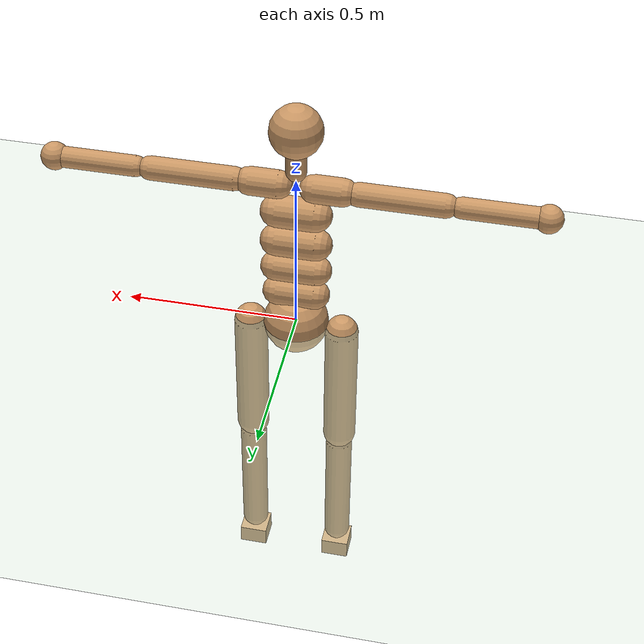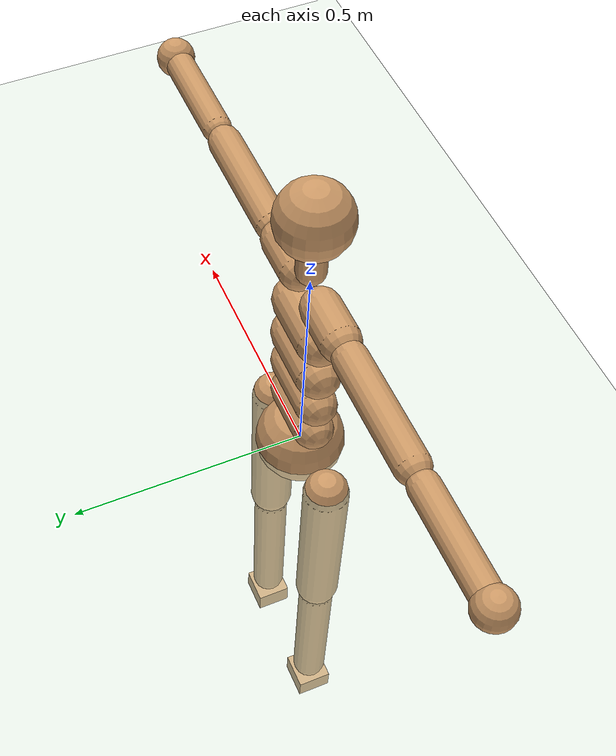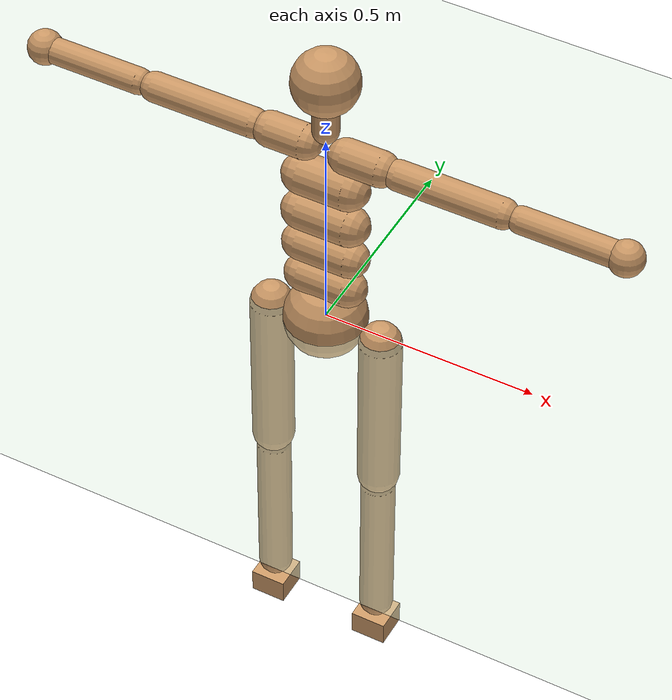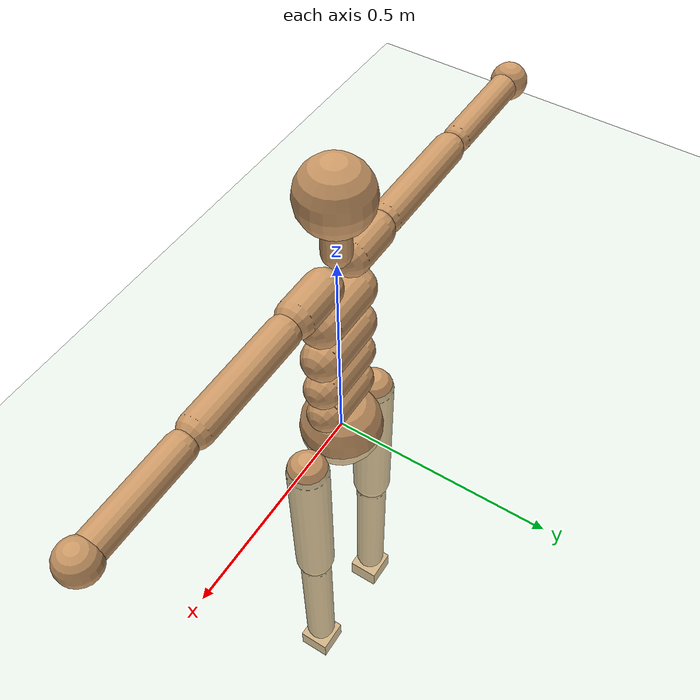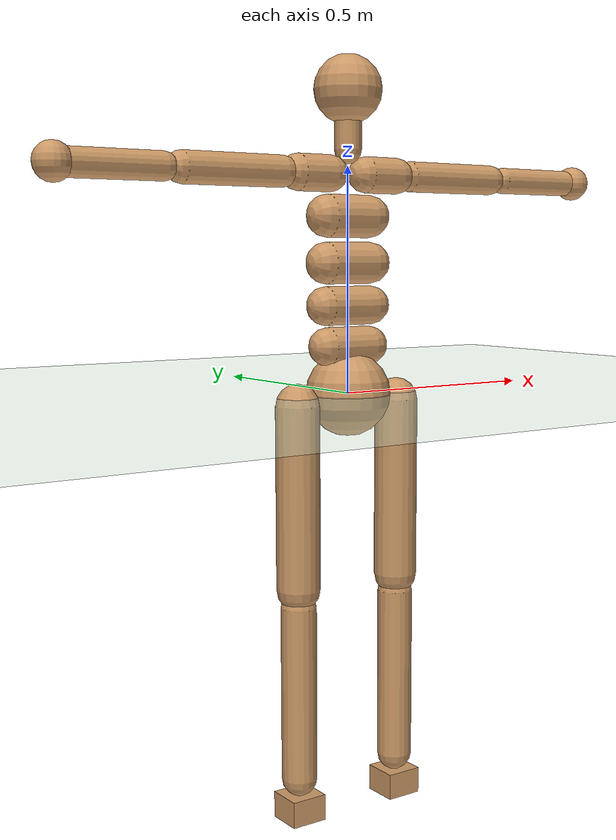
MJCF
<mujoco model="humanoid">
  <compiler angle="degree" inertiafromgeom="true" coordinate="global"/>
  <include file="./common/materials.xml"/>
  <visual>
    <headlight ambient=".4 .4 .4" diffuse=".8 .8 .8" specular="0.1 0.1 0.1"/>
    <map znear=".01"/>
    <quality shadowsize="2048"/>
  </visual>
  <default>
    <joint damping="0.0" armature="0.01" stiffness="0.0" limited="true"/>
    <geom conaffinity="7" condim="1" contype="7" margin="0.001" material="self" rgba="0.8 0.6 .4 1"/>
    <default class="expert">
        <geom conaffinity="7" condim="1" contype="7" margin="0.001" material="self" rgba="0.5 0.1 0.0 1"/>
    </default>
  </default>
  <statistic extent="3" center="0 0 1"/>
  <option timestep="0.00222222222">
    <flag contact="disable"/>
  </option>
  <asset>
    <texture type="skybox" file="./common/sky1.png" gridsize="3 4" gridlayout=".U..LFRB.D.." width="8192" height="8192"/>
    <texture builtin="flat" height="1278" mark="cross" markrgb="1 1 1" name="texgeom" random="0.01" rgb1=".8 .6 .4" rgb2=".8 .6 .4" type="cube" width="127"/>
    <material name="geom" emission="0.2" texture="texgeom" texuniform="true"/>
  </asset>
  <worldbody>
    <light cutoff="100" diffuse="1 1 1" dir="-0 0 -1.3" directional="true" exponent="1" pos="0 0 1.3" specular=".1 .1 .1"/>
    <geom condim="3" friction="1. .1 .1" material="grid" name="floor" pos="0 0 0" rgba=".8 .9 .8 1" size="100 100 .2" type="plane"/>
    <body name="Hips" user="0.0000 0.0000 0.0000" pos="0.0000 0.0000 0.0000">
      <joint armature="0" damping="0" limited="false" name="Hips" pos="0.0000 0.0000 0.0000" stiffness="0" type="free"/>
      <geom pos="0.0000 0.0000 0.0000" size="0.0950" type="sphere"/>
      <body name="Spine" user="0.0000 0.0000 0.1514928" pos="0.0000 0.0000 0.0614928">
        <geom fromto="-0.0550 0.0000 0.1064928 0.0550 0.0000 0.1064928" size="0.0430" type="capsule"/>
        <joint axis="1.0000 0.0000 0.0000" name="Spine_x" pos="0.0000 0.0000 0.0614928" range="-30.0000 45.0000" type="hinge"/>
        <joint axis="0.0000 1.0000 0.0000" name="Spine_y" pos="0.0000 0.0000 0.0614928" range="-30.0000 30.0000" type="hinge"/>
        <joint axis="0.0000 0.0000 1.0000" name="Spine_z" pos="0.0000 0.0000 0.0614928" range="-30.0000 30.0000" type="hinge"/>
        <body name="Spine1" user="0.0000 0.0000 0.2414928" pos="0.0000 0.0000 0.1514928">
          <geom fromto="-0.0600 0.0000 0.1960 0.0600 0.0000 0.1960" size="0.0430" type="capsule"/>
          <joint axis="1.0000 0.0000 0.0000" name="Spine1_x" pos="0.0000 0.0000 0.1514928" range="-30.0000 45.0000" type="hinge"/>
          <joint axis="0.0000 1.0000 0.0000" name="Spine1_y" pos="0.0000 0.0000 0.1514928" range="-30.0000 30.0000" type="hinge"/>
          <joint axis="0.0000 0.0000 1.0000" name="Spine1_z" pos="0.0000 0.0000 0.1514928" range="-30.0000 30.0000" type="hinge"/>
          <body name="Spine2" user="0.0000 0.0000 0.3414928" pos="0.0000 0.0000 0.2414928">
            <geom fromto="-0.0575 0.0000 0.2896 0.0575 0.0000 0.2896" size="0.0460" type="capsule"/>
            <joint axis="1.0000 0.0000 0.0000" name="Spine2_x" pos="0.0000 0.0000 0.2414928" range="-30.0000 45.0000" type="hinge"/>
            <joint axis="0.0000 1.0000 0.0000" name="Spine2_y" pos="0.0000 0.0000 0.2414928" range="-30.0000 30.0000" type="hinge"/>
            <joint axis="0.0000 0.0000 1.0000" name="Spine2_z" pos="0.0000 0.0000 0.2414928" range="-30.0000 30.0000" type="hinge"/>
            <body name="Spine3" user="0.0000 0.0000 0.49700757" pos="0.0000 0.0000 0.3414928">
              <geom fromto="-0.0550 0.0000 0.3914 0.0550 0.0000 0.3914" size="0.0470" type="capsule"/>
              <joint axis="1.0000 0.0000 0.0000" name="Spine3_x" pos="0.0000 0.0000 0.3414928" range="-30.0000 45.0000" type="hinge"/>
              <joint axis="0.0000 1.0000 0.0000" name="Spine3_y" pos="0.0000 0.0000 0.3414928" range="-30.0000 30.0000" type="hinge"/>
              <joint axis="0.0000 0.0000 1.0000" name="Spine3_z" pos="0.0000 0.0000 0.3414928" range="-30.0000 30.0000" type="hinge"/>
              <body name="Neck" user="0.0000 0.0000 0.68141895" pos="0.0000 0.0000 0.49700757">
                <joint axis="1.0000 0.0000 0.0000" name="Neck_x" pos="0.0000 0.0000 0.5579" range="-30.0000 45.0000" type="hinge"/>
                <joint axis="0.0000 1.0000 0.0000" name="Neck_y" pos="0.0000 0.0000 0.5579" range="-30.0000 30.0000" type="hinge"/>
                <joint axis="0.0000 0.0000 1.0000" name="Neck_z" pos="0.0000 0.0000 0.5579" range="-30.0000 30.0000" type="hinge"/>
                <geom fromto="0.0000 0.0000 0.5336 0.0000 0.0000 0.6131" size="0.0300" type="capsule"/>
                <body name="Head" user="0.0000 0.0000 0.8188" pos="0.0000 0.0000 0.68141895">
                  <geom pos="0.0000 0.0000 0.6628" size="0.0750" type="sphere"/>
                  <joint axis="1.0000 0.0000 0.0000" name="Head_x" pos="0.0000 0.0000 0.68141895" range="-30.0000 45.0000" type="hinge"/>
                  <joint axis="0.0000 1.0000 0.0000" name="Head_y" pos="0.0000 0.0000 0.68141895" range="-30.0000 30.0000" type="hinge"/>
                  <joint axis="0.0000 0.0000 1.0000" name="Head_z" pos="0.0000 0.0000 0.68141895" range="-30.0000 30.0000" type="hinge"/>
                </body>
              </body>
              <body name="RightShoulder" user="-0.1505 0.0000 0.4821" pos="-0.0286 0.0000 0.4821">
                <joint axis="1.0000 0.0000 0.0000" name="RightShoulder_x" pos="-0.0286 0.0000 0.4821" range="-20.0000 20.0000" type="hinge"/>
                <joint axis="0.0000 1.0000 0.0000" name="RightShoulder_y" pos="-0.0286 0.0000 0.4821" range="-20.0000 20.0000" type="hinge"/>
                <joint axis="0.0000 0.0000 1.0000" name="RightShoulder_z" pos="-0.0286 0.0000 0.4821" range="-20.0000 20.0000" type="hinge"/>
                <geom fromto="-0.0486 0.0000 0.4821 -0.1305 0.0000 0.4821" size="0.0400" type="capsule"/>
                <body name="RightArm" user="-0.4303 0.0000 0.4821" pos="-0.1505 0.0000 0.4821">
                  <joint axis="1.0000 0.0000 0.0000" name="RightArm_x" pos="-0.1505 0.0000 0.4821" range="-90.0000 90.0000" type="hinge"/>
                  <joint axis="0.0000 1.0000 0.0000" name="RightArm_y" pos="-0.1505 0.0000 0.4821" range="-90.0000 90.0000" type="hinge"/>
                  <joint axis="0.0000 0.0000 1.0000" name="RightArm_z" pos="-0.1505 0.0000 0.4821" range="-60.0000 90.0000" type="hinge"/>
                  <geom fromto="-0.1708 0.0000 0.4821 -0.4103 0.0000 0.4821" size="0.0340" type="capsule"/>
                  <body name="RightForeArm" user="-0.6803 0.0000 0.4821" pos="-0.4303 0.0000 0.4821">
                    <joint axis="0.0000 0.0000 1.0000" name="RightForeArm_z" pos="-0.4303 0.0000 0.4821" range="-10.0000 170.0000" type="hinge"/>
                    <geom fromto="-0.4503 0.0000 0.4821 -0.6603 0.0000 0.4821" size="0.0300" type="capsule"/>
                    <body name="RightHand" user="-0.7282 0.0000 0.4821" pos="-0.6803 0.0000 0.4821">
                      <geom pos="-0.6843 0.0000 0.4821" size="0.0400" type="sphere"/>
                      <joint axis="1.0000 0.0000 0.0000" name="RightHand_x" pos="-0.6803 0.0000 0.4821" range="-90.0000 90.0000" type="hinge"/>
                      <joint axis="0.0000 1.0000 0.0000" name="RightHand_y" pos="-0.6803 0.0000 0.4821" range="-90.0000 90.0000" type="hinge"/>
                      <joint axis="0.0000 0.0000 1.0000" name="RightHand_z" pos="-0.6803 0.0000 0.4821" range="-90.0000 90.0000" type="hinge"/>
                    </body>
                  </body>
                </body>
              </body>
              <body name="LeftShoulder" user="0.1505 0.0000 0.4821" pos="0.0286 0.0000 0.4821">
                <joint axis="1.0000 0.0000 0.0000" name="LeftShoulder_x" pos="0.0286 0.0000 0.4821" range="-20.0000 20.0000" type="hinge"/>
                <joint axis="0.0000 1.0000 0.0000" name="LeftShoulder_y" pos="0.0286 0.0000 0.4821" range="-20.0000 20.0000" type="hinge"/>
                <joint axis="0.0000 0.0000 1.0000" name="LeftShoulder_z" pos="0.0286 0.0000 0.4821" range="-20.0000 20.0000" type="hinge"/>
                <geom fromto="0.0486 0.0000 0.4821 0.1305 0.0000 0.4821" size="0.0400" type="capsule"/>
                <body name="LeftArm" user="0.4303 0.0000 0.4821" pos="0.1505 0.0000 0.4821">
                  <joint axis="1.0000 0.0000 0.0000" name="LeftArm_x" pos="0.1505 0.0000 0.4821" range="-90.0000 90.0000" type="hinge"/>
                  <joint axis="0.0000 1.0000 0.0000" name="LeftArm_y" pos="0.1505 0.0000 0.4821" range="-90.0000 90.0000" type="hinge"/>
                  <joint axis="0.0000 0.0000 1.0000" name="LeftArm_z" pos="0.1505 0.0000 0.4821" range="-90.0000 60.0000" type="hinge"/>
                  <geom fromto="0.1708 0.0000 0.4821 0.4103 0.0000 0.4821" size="0.0340" type="capsule"/>
                  <body name="LeftForeArm" user="0.6803 0.0000 0.4821" pos="0.4303 0.0000 0.4821">
                    <joint axis="0.0000 0.0000 1.0000" name="LeftForeArm_z" pos="0.4303 0.0000 0.4821" range="-170.0000 10.0000" type="hinge"/>
                    <geom fromto="0.4503 0.0000 0.4821 0.6603 0.0000 0.4821" size="0.0300" type="capsule"/>
                    <body name="LeftHand" user="0.7282 0.0000 0.4821" pos="0.6803 0.0000 0.4821">
                      <geom pos="0.6843 0.0000 0.4821" size="0.0400" type="sphere"/>
                      <joint axis="1.0000 0.0000 0.0000" name="LeftHand_x" pos="0.6803 0.0000 0.4821" range="-90.0000 90.0000" type="hinge"/>
                      <joint axis="0.0000 1.0000 0.0000" name="LeftHand_y" pos="0.6803 0.0000 0.4821" range="-90.0000 90.0000" type="hinge"/>
                      <joint axis="0.0000 0.0000 1.0000" name="LeftHand_z" pos="0.6803 0.0000 0.4821" range="-90.0000 90.0000" type="hinge"/>
                    </body>
                  </body>
                </body>
              </body>
            </body>
          </body>
        </body>
      </body>
      <body name="RightUpLeg" user="-0.13545777 0.0000 -0.45170122" pos="-0.13545777 0.0000 -0.0000">
        <joint axis="1.0000 0.0000 0.0000" name="RightUpLeg_x" pos="-0.13545777 0.0000 -0.0000" range="-170.0000 20.0000" type="hinge"/>
        <joint axis="0.0000 1.0000 0.0000" name="RightUpLeg_y" pos="-0.13545777 0.0000 -0.0000" range="-40.0000 90.0000" type="hinge"/>
        <joint axis="0.0000 0.0000 1.0000" name="RightUpLeg_z" pos="-0.13545777 0.0000 -0.0000" range="-70.0000 70.0000" type="hinge"/>
        <geom fromto="-0.13545777 0.0000 -0.0200 -0.13545777 0.0000 -0.43170122" size="0.0490" type="capsule"/>
        <body name="RightLeg" user="-0.13545777 0.0000 -0.89865848" pos="-0.13545777 0.0000 -0.45170122">
          <joint axis="1.0000 0.0000 0.0000" name="RightLeg_x" pos="-0.13545777 0.0000 -0.45170122" range="0.0000 170.0000" type="hinge"/>
          <geom contype="1" conaffinity="1" fromto="-0.13545777 0.0000 -0.47170122 -0.13545777 0.0000 -0.87165848" size="0.0400" type="capsule"/>
          <body name="RightFoot" user="-0.13545777 -0.1308 -0.9597" pos="-0.13545777 0.0000 -0.89865848">
            <geom contype="1" conaffinity="1" pos="-0.13545777 -0.0000 -0.93865848" size="0.0420 0.0410 0.0300" quat="1.0000 -0.0000 -0.0000 -0.0000" type="box"/>
            <joint axis="1.0000 0.0000 0.0000" name="RightFoot_x" pos="-0.13545777 0.0000 -0.89865848" range="-60.0000 60.0000" type="hinge"/>
            <joint axis="0.0000 1.0000 0.0000" name="RightFoot_y" pos="-0.13545777 0.0000 -0.89865848" range="-60.0000 60.0000" type="hinge"/>
            <joint axis="0.0000 0.0000 1.0000" name="RightFoot_z" pos="-0.13545777 0.0000 -0.89865848" range="-60.0000 60.0000" type="hinge"/>
          </body>
        </body>
      </body>
      <body name="LeftUpLeg" user="0.13545777 0.0000 -0.45170122" pos="0.13545777 0.0000 -0.0000">
        <joint axis="1.0000 0.0000 0.0000" name="LeftUpLeg_x" pos="0.13545777 0.0000 -0.0000" range="-170.0000 20.0000" type="hinge"/>
        <joint axis="0.0000 1.0000 0.0000" name="LeftUpLeg_y" pos="0.13545777 0.0000 -0.0000" range="-90.0000 40.0000" type="hinge"/>
        <joint axis="0.0000 0.0000 1.0000" name="LeftUpLeg_z" pos="0.13545777 0.0000 -0.0000" range="-70.0000 70.0000" type="hinge"/>
        <geom fromto="0.13545777 0.0000 -0.0200 0.13545777 0.0000 -0.43170122" size="0.0490" type="capsule"/>
        <body name="LeftLeg" user="0.13545777 0.0000 -0.89865848" pos="0.13545777 0.0000 -0.45170122">
          <joint axis="1.0000 0.0000 0.0000" name="LeftLeg_x" pos="0.13545777 0.0000 -0.45170122" range="0.0000 170.0000" type="hinge"/>
          <geom contype="2" conaffinity="2" fromto="0.13545777 0.0000 -0.47170122 0.13545777 0.0000 -0.87165848" size="0.0400" type="capsule"/>
          <body name="LeftFoot" user="0.13545777 -0.1308 -0.9597" pos="0.13545777 0.0000 -0.89865848">
            <geom contype="2" conaffinity="2" pos="0.13545777 -0.0000 -0.93865848" size="0.0420 0.0410 0.0300" quat="1.0000 -0.0000 -0.0000 0.0000" type="box"/>
            <joint axis="1.0000 0.0000 0.0000" name="LeftFoot_x" pos="0.13545777 0.0000 -0.89865848" range="-60.0000 60.0000" type="hinge"/>
            <joint axis="0.0000 1.0000 0.0000" name="LeftFoot_y" pos="0.13545777 0.0000 -0.89865848" range="-60.0000 60.0000" type="hinge"/>
            <joint axis="0.0000 0.0000 1.0000" name="LeftFoot_z" pos="0.13545777 0.0000 -0.89865848" range="-60.0000 60.0000" type="hinge"/>
          </body>
        </body>
      </body>
    </body>
    <body name="e_Hips" childclass="expert" user="0.0000 0.0000 0.0000" pos="0.0000 0.0000 0.0000">
      <joint armature="0" damping="0" limited="false" name="e_Hips" pos="0.0000 0.0000 0.0000" stiffness="0" type="free"/>
      <geom pos="0.0000 0.0000 0.0000" size="0.0950" type="sphere"/>
      <body name="e_Spine" user="0.0000 0.0000 0.1514928" pos="0.0000 0.0000 0.0614928">
        <geom fromto="-0.0550 0.0000 0.1064928 0.0550 0.0000 0.1064928" size="0.0430" type="capsule"/>
        <joint axis="1.0000 0.0000 0.0000" name="e_Spine_x" pos="0.0000 0.0000 0.0614928" range="-30.0000 45.0000" type="hinge"/>
        <joint axis="0.0000 1.0000 0.0000" name="e_Spine_y" pos="0.0000 0.0000 0.0614928" range="-30.0000 30.0000" type="hinge"/>
        <joint axis="0.0000 0.0000 1.0000" name="e_Spine_z" pos="0.0000 0.0000 0.0614928" range="-30.0000 30.0000" type="hinge"/>
        <body name="e_Spine1" user="0.0000 0.0000 0.2414928" pos="0.0000 0.0000 0.1514928">
          <geom fromto="-0.0600 0.0000 0.1960 0.0600 0.0000 0.1960" size="0.0430" type="capsule"/>
          <joint axis="1.0000 0.0000 0.0000" name="e_Spine1_x" pos="0.0000 0.0000 0.1514928" range="-30.0000 45.0000" type="hinge"/>
          <joint axis="0.0000 1.0000 0.0000" name="e_Spine1_y" pos="0.0000 0.0000 0.1514928" range="-30.0000 30.0000" type="hinge"/>
          <joint axis="0.0000 0.0000 1.0000" name="e_Spine1_z" pos="0.0000 0.0000 0.1514928" range="-30.0000 30.0000" type="hinge"/>
          <body name="e_Spine2" user="0.0000 0.0000 0.3414928" pos="0.0000 0.0000 0.2414928">
            <geom fromto="-0.0575 0.0000 0.2896 0.0575 0.0000 0.2896" size="0.0460" type="capsule"/>
            <joint axis="1.0000 0.0000 0.0000" name="e_Spine2_x" pos="0.0000 0.0000 0.2414928" range="-30.0000 45.0000" type="hinge"/>
            <joint axis="0.0000 1.0000 0.0000" name="e_Spine2_y" pos="0.0000 0.0000 0.2414928" range="-30.0000 30.0000" type="hinge"/>
            <joint axis="0.0000 0.0000 1.0000" name="e_Spine2_z" pos="0.0000 0.0000 0.2414928" range="-30.0000 30.0000" type="hinge"/>
            <body name="e_Spine3" user="0.0000 0.0000 0.49700757" pos="0.0000 0.0000 0.3414928">
              <geom fromto="-0.0550 0.0000 0.3914 0.0550 0.0000 0.3914" size="0.0470" type="capsule"/>
              <joint axis="1.0000 0.0000 0.0000" name="e_Spine3_x" pos="0.0000 0.0000 0.3414928" range="-30.0000 45.0000" type="hinge"/>
              <joint axis="0.0000 1.0000 0.0000" name="e_Spine3_y" pos="0.0000 0.0000 0.3414928" range="-30.0000 30.0000" type="hinge"/>
              <joint axis="0.0000 0.0000 1.0000" name="e_Spine3_z" pos="0.0000 0.0000 0.3414928" range="-30.0000 30.0000" type="hinge"/>
              <body name="e_Neck" user="0.0000 0.0000 0.68141895" pos="0.0000 0.0000 0.49700757">
                <joint axis="1.0000 0.0000 0.0000" name="e_Neck_x" pos="0.0000 0.0000 0.5579" range="-30.0000 45.0000" type="hinge"/>
                <joint axis="0.0000 1.0000 0.0000" name="e_Neck_y" pos="0.0000 0.0000 0.5579" range="-30.0000 30.0000" type="hinge"/>
                <joint axis="0.0000 0.0000 1.0000" name="e_Neck_z" pos="0.0000 0.0000 0.5579" range="-30.0000 30.0000" type="hinge"/>
                <geom fromto="0.0000 0.0000 0.5336 0.0000 0.0000 0.6131" size="0.0300" type="capsule"/>
                <body name="e_Head" user="0.0000 0.0000 0.8188" pos="0.0000 0.0000 0.68141895">
                  <geom pos="0.0000 0.0000 0.6628" size="0.0750" type="sphere"/>
                  <joint axis="1.0000 0.0000 0.0000" name="e_Head_x" pos="0.0000 0.0000 0.68141895" range="-30.0000 45.0000" type="hinge"/>
                  <joint axis="0.0000 1.0000 0.0000" name="e_Head_y" pos="0.0000 0.0000 0.68141895" range="-30.0000 30.0000" type="hinge"/>
                  <joint axis="0.0000 0.0000 1.0000" name="e_Head_z" pos="0.0000 0.0000 0.68141895" range="-30.0000 30.0000" type="hinge"/>
                </body>
              </body>
              <body name="e_RightShoulder" user="-0.1505 0.0000 0.4821" pos="-0.0286 0.0000 0.4821">
                <joint axis="1.0000 0.0000 0.0000" name="e_RightShoulder_x" pos="-0.0286 0.0000 0.4821" range="-20.0000 20.0000" type="hinge"/>
                <joint axis="0.0000 1.0000 0.0000" name="e_RightShoulder_y" pos="-0.0286 0.0000 0.4821" range="-20.0000 20.0000" type="hinge"/>
                <joint axis="0.0000 0.0000 1.0000" name="e_RightShoulder_z" pos="-0.0286 0.0000 0.4821" range="-20.0000 20.0000" type="hinge"/>
                <geom fromto="-0.0486 0.0000 0.4821 -0.1305 0.0000 0.4821" size="0.0400" type="capsule"/>
                <body name="e_RightArm" user="-0.4303 0.0000 0.4821" pos="-0.1505 0.0000 0.4821">
                  <joint axis="1.0000 0.0000 0.0000" name="e_RightArm_x" pos="-0.1505 0.0000 0.4821" range="-90.0000 90.0000" type="hinge"/>
                  <joint axis="0.0000 1.0000 0.0000" name="e_RightArm_y" pos="-0.1505 0.0000 0.4821" range="-90.0000 90.0000" type="hinge"/>
                  <joint axis="0.0000 0.0000 1.0000" name="e_RightArm_z" pos="-0.1505 0.0000 0.4821" range="-60.0000 90.0000" type="hinge"/>
                  <geom fromto="-0.1708 0.0000 0.4821 -0.4103 0.0000 0.4821" size="0.0340" type="capsule"/>
                  <body name="e_RightForeArm" user="-0.6803 0.0000 0.4821" pos="-0.4303 0.0000 0.4821">
                    <joint axis="0.0000 0.0000 1.0000" name="e_RightForeArm_z" pos="-0.4303 0.0000 0.4821" range="-10.0000 170.0000" type="hinge"/>
                    <geom fromto="-0.4503 0.0000 0.4821 -0.6603 0.0000 0.4821" size="0.0300" type="capsule"/>
                    <body name="e_RightHand" user="-0.7282 0.0000 0.4821" pos="-0.6803 0.0000 0.4821">
                      <geom pos="-0.6843 0.0000 0.4821" size="0.0400" type="sphere"/>
                      <joint axis="1.0000 0.0000 0.0000" name="e_RightHand_x" pos="-0.6803 0.0000 0.4821" range="-90.0000 90.0000" type="hinge"/>
                      <joint axis="0.0000 1.0000 0.0000" name="e_RightHand_y" pos="-0.6803 0.0000 0.4821" range="-90.0000 90.0000" type="hinge"/>
                      <joint axis="0.0000 0.0000 1.0000" name="e_RightHand_z" pos="-0.6803 0.0000 0.4821" range="-90.0000 90.0000" type="hinge"/>
                    </body>
                  </body>
                </body>
              </body>
              <body name="e_LeftShoulder" user="0.1505 0.0000 0.4821" pos="0.0286 0.0000 0.4821">
                <joint axis="1.0000 0.0000 0.0000" name="e_LeftShoulder_x" pos="0.0286 0.0000 0.4821" range="-20.0000 20.0000" type="hinge"/>
                <joint axis="0.0000 1.0000 0.0000" name="e_LeftShoulder_y" pos="0.0286 0.0000 0.4821" range="-20.0000 20.0000" type="hinge"/>
                <joint axis="0.0000 0.0000 1.0000" name="e_LeftShoulder_z" pos="0.0286 0.0000 0.4821" range="-20.0000 20.0000" type="hinge"/>
                <geom fromto="0.0486 0.0000 0.4821 0.1305 0.0000 0.4821" size="0.0400" type="capsule"/>
                <body name="e_LeftArm" user="0.4303 0.0000 0.4821" pos="0.1505 0.0000 0.4821">
                  <joint axis="1.0000 0.0000 0.0000" name="e_LeftArm_x" pos="0.1505 0.0000 0.4821" range="-90.0000 90.0000" type="hinge"/>
                  <joint axis="0.0000 1.0000 0.0000" name="e_LeftArm_y" pos="0.1505 0.0000 0.4821" range="-90.0000 90.0000" type="hinge"/>
                  <joint axis="0.0000 0.0000 1.0000" name="e_LeftArm_z" pos="0.1505 0.0000 0.4821" range="-90.0000 60.0000" type="hinge"/>
                  <geom fromto="0.1708 0.0000 0.4821 0.4103 0.0000 0.4821" size="0.0340" type="capsule"/>
                  <body name="e_LeftForeArm" user="0.6803 0.0000 0.4821" pos="0.4303 0.0000 0.4821">
                    <joint axis="0.0000 0.0000 1.0000" name="e_LeftForeArm_z" pos="0.4303 0.0000 0.4821" range="-170.0000 10.0000" type="hinge"/>
                    <geom fromto="0.4503 0.0000 0.4821 0.6603 0.0000 0.4821" size="0.0300" type="capsule"/>
                    <body name="e_LeftHand" user="0.7282 0.0000 0.4821" pos="0.6803 0.0000 0.4821">
                      <geom pos="0.6843 0.0000 0.4821" size="0.0400" type="sphere"/>
                      <joint axis="1.0000 0.0000 0.0000" name="e_LeftHand_x" pos="0.6803 0.0000 0.4821" range="-90.0000 90.0000" type="hinge"/>
                      <joint axis="0.0000 1.0000 0.0000" name="e_LeftHand_y" pos="0.6803 0.0000 0.4821" range="-90.0000 90.0000" type="hinge"/>
                      <joint axis="0.0000 0.0000 1.0000" name="e_LeftHand_z" pos="0.6803 0.0000 0.4821" range="-90.0000 90.0000" type="hinge"/>
                    </body>
                  </body>
                </body>
              </body>
            </body>
          </body>
        </body>
      </body>
      <body name="e_RightUpLeg" user="-0.13545777 0.0000 -0.45170122" pos="-0.13545777 0.0000 -0.0000">
        <joint axis="1.0000 0.0000 0.0000" name="e_RightUpLeg_x" pos="-0.13545777 0.0000 -0.0000" range="-170.0000 20.0000" type="hinge"/>
        <joint axis="0.0000 1.0000 0.0000" name="e_RightUpLeg_y" pos="-0.13545777 0.0000 -0.0000" range="-40.0000 90.0000" type="hinge"/>
        <joint axis="0.0000 0.0000 1.0000" name="e_RightUpLeg_z" pos="-0.13545777 0.0000 -0.0000" range="-70.0000 70.0000" type="hinge"/>
        <geom fromto="-0.13545777 0.0000 -0.0200 -0.13545777 0.0000 -0.43170122" size="0.0490" type="capsule"/>
        <body name="e_RightLeg" user="-0.13545777 0.0000 -0.89865848" pos="-0.13545777 0.0000 -0.45170122">
          <joint axis="1.0000 0.0000 0.0000" name="e_RightLeg_x" pos="-0.13545777 0.0000 -0.45170122" range="0.0000 170.0000" type="hinge"/>
          <geom contype="1" conaffinity="1" fromto="-0.13545777 0.0000 -0.47170122 -0.13545777 0.0000 -0.87165848" size="0.0400" type="capsule"/>
          <body name="e_RightFoot" user="-0.13545777 -0.1308 -0.9597" pos="-0.13545777 0.0000 -0.89865848">
            <geom contype="1" conaffinity="1" pos="-0.13545777 -0.0000 -0.93865848" size="0.0420 0.0410 0.0300" quat="1.0000 -0.0000 -0.0000 -0.0000" type="box"/>
            <joint axis="1.0000 0.0000 0.0000" name="e_RightFoot_x" pos="-0.13545777 0.0000 -0.89865848" range="-60.0000 60.0000" type="hinge"/>
            <joint axis="0.0000 1.0000 0.0000" name="e_RightFoot_y" pos="-0.13545777 0.0000 -0.89865848" range="-60.0000 60.0000" type="hinge"/>
            <joint axis="0.0000 0.0000 1.0000" name="e_RightFoot_z" pos="-0.13545777 0.0000 -0.89865848" range="-60.0000 60.0000" type="hinge"/>
          </body>
        </body>
      </body>
      <body name="e_LeftUpLeg" user="0.13545777 0.0000 -0.45170122" pos="0.13545777 0.0000 -0.0000">
        <joint axis="1.0000 0.0000 0.0000" name="e_LeftUpLeg_x" pos="0.13545777 0.0000 -0.0000" range="-170.0000 20.0000" type="hinge"/>
        <joint axis="0.0000 1.0000 0.0000" name="e_LeftUpLeg_y" pos="0.13545777 0.0000 -0.0000" range="-90.0000 40.0000" type="hinge"/>
        <joint axis="0.0000 0.0000 1.0000" name="e_LeftUpLeg_z" pos="0.13545777 0.0000 -0.0000" range="-70.0000 70.0000" type="hinge"/>
        <geom fromto="0.13545777 0.0000 -0.0200 0.13545777 0.0000 -0.43170122" size="0.0490" type="capsule"/>
        <body name="e_LeftLeg" user="0.13545777 0.0000 -0.89865848" pos="0.13545777 0.0000 -0.45170122">
          <joint axis="1.0000 0.0000 0.0000" name="e_LeftLeg_x" pos="0.13545777 0.0000 -0.45170122" range="0.0000 170.0000" type="hinge"/>
          <geom contype="2" conaffinity="2" fromto="0.13545777 0.0000 -0.47170122 0.13545777 0.0000 -0.87165848" size="0.0400" type="capsule"/>
          <body name="e_LeftFoot" user="0.13545777 -0.1308 -0.9597" pos="0.13545777 0.0000 -0.89865848">
            <geom contype="2" conaffinity="2" pos="0.13545777 -0.0000 -0.93865848" size="0.0420 0.0410 0.0300" quat="1.0000 -0.0000 -0.0000 0.0000" type="box"/>
            <joint axis="1.0000 0.0000 0.0000" name="e_LeftFoot_x" pos="0.13545777 0.0000 -0.89865848" range="-60.0000 60.0000" type="hinge"/>
            <joint axis="0.0000 1.0000 0.0000" name="e_LeftFoot_y" pos="0.13545777 0.0000 -0.89865848" range="-60.0000 60.0000" type="hinge"/>
            <joint axis="0.0000 0.0000 1.0000" name="e_LeftFoot_z" pos="0.13545777 0.0000 -0.89865848" range="-60.0000 60.0000" type="hinge"/>
          </body>
        </body>
      </body>
    </body>
  </worldbody>
</mujoco>

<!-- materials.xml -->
<!--
Common textures, colors and materials to be used throughout this suite. Some
materials such as xxx_highlight are activated on occurence of certain events,
for example receiving a positive reward.
-->
<mujoco>
  <asset>
    <texture name="grid" type="2d" builtin="checker" rgb1=".1 .2 .3" rgb2=".2 .3 .4" width="300" height="300" mark="edge" markrgb=".2 .3 .4"/>
    <texture builtin="checker" height="100" name="texplane" rgb1="0 0 0" rgb2=".8 .8 .8" type="2d" width="100"/>
    <texture name="grass" file="./common/grass.png" type="2d"/>
    <material name="grid" texture="grid" texrepeat="1 1" texuniform="true" reflectance=".2"/>
    <material name="MatPlane" reflectance="0.5" shininess="1" specular="1" texrepeat="60 60" texture="texplane"/>
    <material name="GrassPlane" reflectance="0.0" shininess="1" specular="1" texrepeat="400 400" texture="grass"/>
    <material name="self" rgba=".7 .5 .3 1"/>
    <material name="self_default" rgba=".7 .5 .3 1"/>
    <material name="self_highlight" rgba="0 .5 .3 1"/>
    <material name="effector" rgba=".7 .4 .2 1"/>
    <material name="effector_default" rgba=".7 .4 .2 1"/>
    <material name="effector_highlight" rgba="0 .5 .3 1"/>
    <material name="decoration" rgba=".3 .5 .7 1"/>
    <material name="eye" rgba="0 .2 1 1"/>
    <material name="target" rgba=".6 .3 .3 1"/>
    <material name="target_default" rgba=".6 .3 .3 1"/>
    <material name="target_highlight" rgba=".6 .3 .3 .4"/>
    <material name="expert" rgba=".6 .3 .3 .4"/>
  </asset>
</mujoco>
